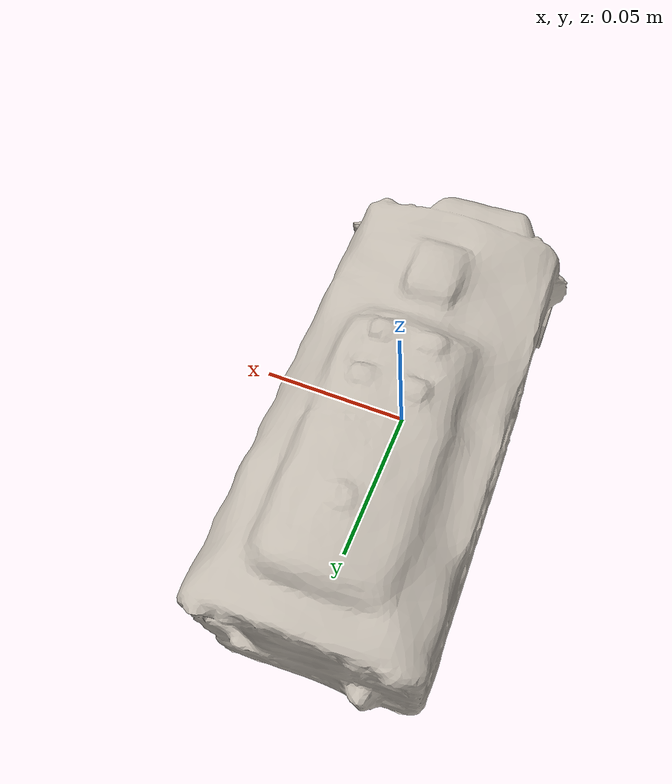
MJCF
<mujoco model="school_bus">
  <compiler angle="radian" />

  <asset>
    <mesh name="school_bus_visual_mesh" file="school_bus/textured.obj" />
    <mesh name="school_bus_collision_mesh_0" file="school_bus/textured_coacd_0.stl" />
    <mesh name="school_bus_collision_mesh_1" file="school_bus/textured_coacd_1.stl" />
    <mesh name="school_bus_collision_mesh_2" file="school_bus/textured_coacd_2.stl" />
    <mesh name="school_bus_collision_mesh_3" file="school_bus/textured_coacd_3.stl" />
    <mesh name="school_bus_collision_mesh_4" file="school_bus/textured_coacd_4.stl" />
    <texture name="school_bus_texture" type="2d" file="school_bus/texture_map.png" />
    <material name="school_bus_material" texture="school_bus_texture" />

    <material name="wheel" rgba="1 1 1 1"/>
  </asset>

  <worldbody>
    <body name="school_bus" pos="0 0 0" euler="0 0 0">
      <freejoint name="school_bus_joint" />
      <geom name="school_bus_visual_geom" type="mesh" mesh="school_bus_visual_mesh" material="school_bus_material" pos="0.0 -3.88e-06 0.00017223" euler="0 0 0" contype="0" conaffinity="0" group="0" />
      <geom name="school_bus_collision_geom_0" type="mesh" mesh="school_bus_collision_mesh_0" pos="0.0 -3.88e-06 0.00017223" euler="0 0 0" contype="1" conaffinity="1" group="3" />
      <geom name="school_bus_collision_geom_1" type="mesh" mesh="school_bus_collision_mesh_1" pos="0.0 -3.88e-06 0.00017223" euler="0 0 0" contype="1" conaffinity="1" group="3" />
      <geom name="school_bus_collision_geom_2" type="mesh" mesh="school_bus_collision_mesh_2" pos="0.0 -3.88e-06 0.00017223" euler="0 0 0" contype="1" conaffinity="1" group="3" />
      <geom name="school_bus_collision_geom_3" type="mesh" mesh="school_bus_collision_mesh_3" pos="0.0 -3.88e-06 0.00017223" euler="0 0 0" contype="1" conaffinity="1" group="3" />
      <geom name="school_bus_collision_geom_4" type="mesh" mesh="school_bus_collision_mesh_4" pos="0.0 -3.88e-06 0.00017223" euler="0 0 0" contype="1" conaffinity="1" group="3" />
      <inertial pos="0 0 0" euler="0 0 0" mass="0.5" diaginertia="0.001 0.001 0.001" />

      <body name="wheel_0" pos="0 0.04 -0.04" quat="0.7071068 0 0.7071068 0">
        <joint name="wheel_joint_0" type="hinge" axis="0 0 1" limited="false" damping="0.0005"/>
        <inertial pos="0 0 0" mass="0.1" diaginertia="0.001 0.001 0.001"/>
        <geom name="wheel_0_collision" type="capsule" size="0.015 0.02" contype="1" conaffinity="1" group="3"/>
      </body>

      <body name="wheel_1" pos="0 -0.085 -0.04" quat="0.7071068 0 0.7071068 0">
        <joint name="wheel_joint_1" type="hinge" axis="0 0 1" limited="false" damping="0.0005"/>
        <inertial pos="0 0 0" mass="0.1" diaginertia="0.001 0.001 0.001"/>
        <geom name="wheel_1_collision" type="capsule" size="0.015 0.02" contype="1" conaffinity="1" group="3"/>
      </body>
    </body>
  </worldbody>
</mujoco>
